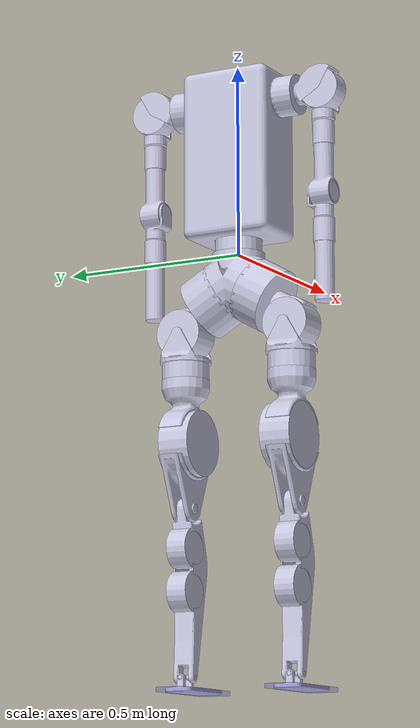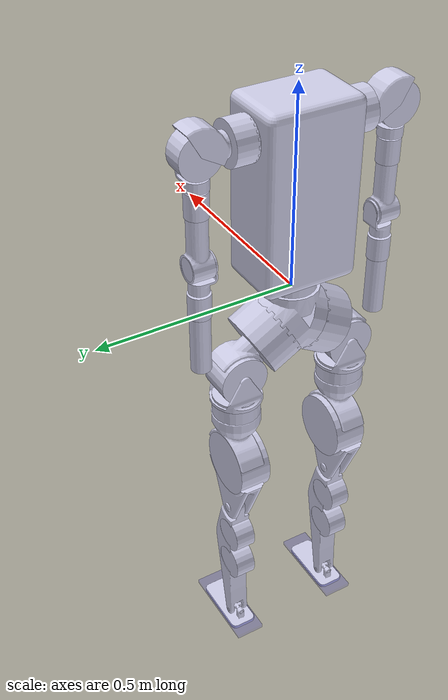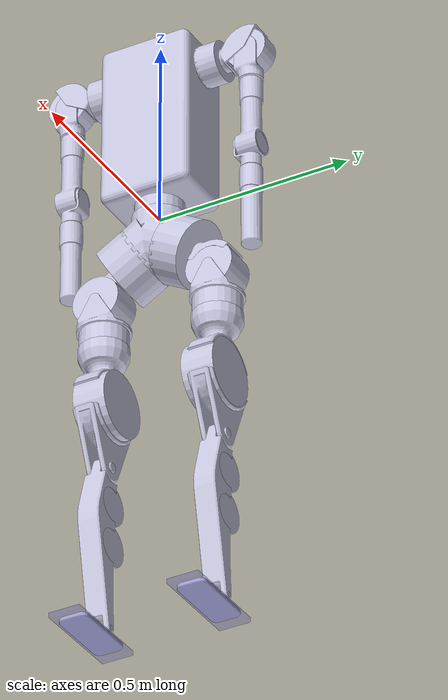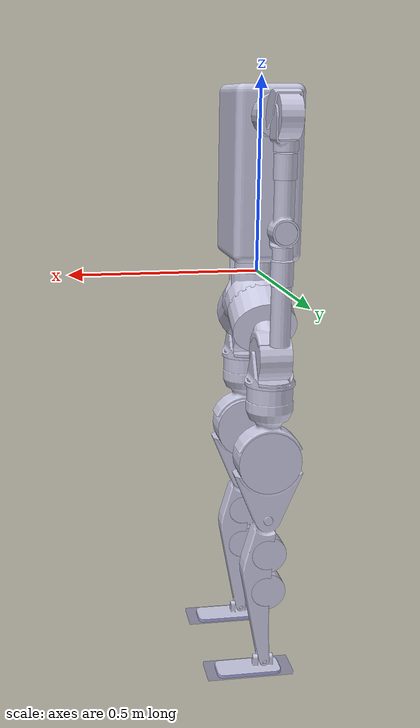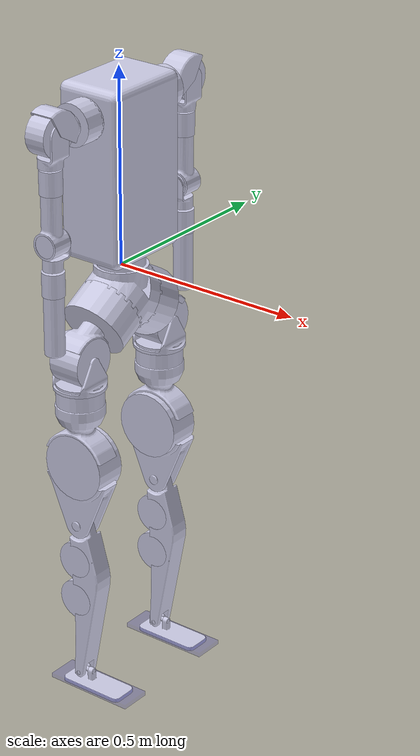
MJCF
<mujoco model="humanoid_pry_merged">
  <compiler angle="radian" meshdir="meshes/"/>

  <asset>
    <mesh name="pelvis_link" file="pelvis_link.stl"/>
    <mesh name="left_hip_pitch_link" file="left_hip_pitch_link.stl"/>
    <mesh name="left_hip_roll_link" file="left_hip_roll_link.stl"/>
    <mesh name="left_hip_yaw_link" file="left_hip_yaw_link.stl"/>
    <mesh name="left_knee_pitch_link" file="left_knee_pitch_link.stl"/>
    <mesh name="left_ankle_pitch_link" file="left_ankle_pitch_link.stl"/>
    <mesh name="left_ankle_roll_link" file="left_ankle_roll_link.stl"/>
    <mesh name="right_hip_pitch_link" file="right_hip_pitch_link.stl"/>
    <mesh name="right_hip_roll_link" file="right_hip_roll_link.stl"/>
    <mesh name="right_hip_yaw_link" file="right_hip_yaw_link.stl"/>
    <mesh name="right_knee_pitch_link" file="right_knee_pitch_link.stl"/>
    <mesh name="right_ankle_pitch_link" file="right_ankle_pitch_link.stl"/>
    <mesh name="right_ankle_roll_link" file="right_ankle_roll_link.stl"/>
    <mesh name="torso_link" file="torso_link.stl"/>
    <mesh name="left_shoulder_pitch_link" file="left_shoulder_pitch_link.stl"/>
    <mesh name="left_shoulder_roll_link" file="left_shoulder_roll_link.stl"/>
    <mesh name="left_shoulder_yaw_link" file="left_shoulder_yaw_link.stl"/>
    <mesh name="left_elbow_pitch_link" file="left_elbow_pitch_link.stl"/>
    <mesh name="left_elbow_yaw_link" file="left_elbow_yaw_link.stl"/>
    <mesh name="right_shoulder_pitch_link" file="right_shoulder_pitch_link.stl"/>
    <mesh name="right_shoulder_roll_link" file="right_shoulder_roll_link.stl"/>
    <mesh name="right_shoulder_yaw_link" file="right_shoulder_yaw_link.stl"/>
    <mesh name="right_elbow_pitch_link" file="right_elbow_pitch_link.stl"/>
    <mesh name="right_elbow_yaw_link" file="right_elbow_yaw_link.stl"/>
  </asset>

  <worldbody>
    <body name="root">
      <inertial pos="-0.000105762 -0.000125932 -0.083059" quat="0.714314 0.699819 -0.00238008 -0.0018917" mass="10.0197" diaginertia="0.0786093 0.0588002 0.0532812"/>
      <joint name="floating_base_joint" type="free" limited="false" actuatorfrclimited="false"/>
      <geom type="mesh" contype="0" conaffinity="0" rgba="0.8 0.8 0.9 1" mesh="pelvis_link"/>
      <geom size="0.085 0.0415" pos="0.000241341 0.0713561 -0.113911" quat="0.866027 0.499998 0 0" type="cylinder" contype="0" conaffinity="0" rgba="0.8 0.8 0.9 1"/>
      <geom size="0.085 0.0415" pos="-0.000444048 -0.0715722 -0.113535" quat="0.500007 0.866021 0 0" type="cylinder" contype="0" conaffinity="0" rgba="0.8 0.8 0.9 1"/>
      <geom size="0.06 0.03205" pos="5.16504e-07 -5.04132e-08 0.0250091" type="cylinder" contype="0" conaffinity="0" rgba="0.8 0.8 0.9 1"/>
      <site name="imu_mount" pos="0 0 0"/>
      <site name="torso_mount" pos="0 0 0.0475"/>
      <site name="imu_site" pos="0 0 0"/>
      <body name="left_hip_pitch_link" pos="0.000472881 0.0986173 -0.1294" quat="0.965926 -0.258819 0 0">
        <inertial pos="-0.00462602 0.0696606 -0.0235316" quat="0.873553 0.485667 0.0307604 0.00932437" mass="2.69168" diaginertia="0.00657498 0.0056448 0.0039876"/>
        <joint name="left_hip_pitch_joint" pos="0 0 0" axis="0 1 0" range="-3.1415 3.1415" armature="0.155952" damping="0.338" frictionloss="1.481"/>
        <geom type="mesh" contype="0" conaffinity="0" rgba="0.8 0.8 0.9 1" mesh="left_hip_pitch_link"/>
        <geom size="0.062 0.0425" pos="-0.00574159 0.0799754 -0.0310142" quat="0.683016 0.183012 0.683009 0.183012" type="cylinder" contype="0" conaffinity="0" rgba="0.8 0.8 0.9 1"/>
        <body name="left_hip_roll_link" pos="0.0367575 0.0798479 -0.0310878" quat="0.965926 0.258819 0 0">
          <inertial pos="-0.0424995 0.000203825 -0.0566004" quat="0.00169529 0.707105 -0.00169529 0.707105" mass="0.607579" diaginertia="0.00147852 0.00127004 0.00077012"/>
          <joint name="left_hip_roll_joint" pos="0 0 0" axis="1 0 0" range="-0.785 1.047" armature="0.32256" damping="0.766" frictionloss="2.492"/>
          <geom type="mesh" contype="0" conaffinity="0" rgba="0.8 0.8 0.9 1" mesh="left_hip_roll_link"/>
          <body name="left_hip_yaw_link" pos="-0.0424995 0.000203861 -0.1155">
            <inertial pos="-0.000105869 -0.0037546 -0.115475" quat="0.706905 -0.0070067 0.00745751 0.707234" mass="7.19819" diaginertia="0.0849143 0.0790738 0.0155256"/>
            <joint name="left_hip_yaw_joint" pos="0 0 0" axis="0 0 1" range="-2.722 2.722" armature="0.061488" damping="0.0069" frictionloss="0.576"/>
            <geom type="mesh" contype="0" conaffinity="0" rgba="0.8 0.8 0.9 1" mesh="left_hip_yaw_link"/>
            <geom size="0.06 0.03205" pos="5.16678e-07 3.40618e-08 0.0224909" type="cylinder" contype="0" conaffinity="0" rgba="0.8 0.8 0.9 1"/>
            <geom size="0.085 0.0415" pos="-0.000238364 -0.0084458 -0.167979" quat="0.70711 0.707103 0 0" type="cylinder" contype="0" conaffinity="0" rgba="0.8 0.8 0.9 1"/>
            <body name="left_knee_pitch_link" pos="9.81694e-10 2.04834e-07 -0.333">
              <inertial pos="0.00791673 1.09261e-07 -0.172865" quat="0.70701 -0.00277597 -0.00195185 0.707195" mass="3.05882" diaginertia="0.0384643 0.0371959 0.0031252"/>
              <joint name="left_knee_pitch_joint" pos="0 0 0" axis="0 1 0" range="0 2.007" armature="0.155952" damping="0.338" frictionloss="1.481"/>
              <geom type="mesh" contype="0" conaffinity="0" rgba="0.8 0.8 0.9 1" mesh="left_knee_pitch_link"/>
              <geom size="0.0525 0.027" pos="-0.00015591 0.0004461 -0.100101" quat="0.70711 0.707103 0 0" type="cylinder" contype="0" conaffinity="0" rgba="0.8 0.8 0.9 1"/>
              <geom size="0.0525 0.027" pos="-0.000319571 -0.0004459 -0.209961" quat="0.70711 0.707103 0 0" type="cylinder" contype="0" conaffinity="0" rgba="0.8 0.8 0.9 1"/>
              <body name="left_ankle_pitch_link" pos="-0.000857798 2.61424e-07 -0.424999">
                <inertial pos="1.5463e-09 -1.54739e-09 -1.72235e-08" quat="0.500032 0.500032 -0.499968 0.499968" mass="0.0915496" diaginertia="2.67722e-05 1.42226e-05 1.42226e-05"/>
                <joint name="left_ankle_pitch_joint" pos="0 0 0" axis="0 1 0" range="-1.221 0.872" armature="0.043416" damping="0.028" frictionloss="0.876"/>
                <geom type="mesh" contype="0" conaffinity="0" rgba="0.8 0.8 0.9 1" mesh="left_ankle_pitch_link"/>
                <body name="left_ankle_roll_link">
                  <inertial pos="0.0388421 1.81614e-08 -0.0295267" quat="0 0.715124 0 0.698997" mass="1.02847" diaginertia="0.00308315 0.00269298 0.000478241"/>
                  <joint name="left_ankle_roll_joint" pos="0 0 0" axis="1 0 0" range="-0.436 0.436" armature="0.043416" damping="0.028" frictionloss="0.876"/>
                  <geom type="mesh" contype="0" conaffinity="0" rgba="0.8 0.8 0.9 1" mesh="left_ankle_roll_link"/>
                  <geom name="left_foot_collision" size="0.12 0.04 0.006" pos="0.04135 0 -0.032" type="box" group="1" rgba="0 0 0.7 0.1"/>
                  <body name="left_foot" pos="0.04135 0 -0.037">
                    <inertial pos="0 0 0" mass="1e-06" diaginertia="1e-09 1e-09 1e-09"/>
                  </body>
                </body>
              </body>
            </body>
          </body>
        </body>
      </body>
      <body name="right_hip_pitch_link" pos="0.000472881 -0.0986173 -0.1294" quat="0.965926 0.258819 0 0">
        <inertial pos="-0.00485402 -0.0696996 -0.0235091" quat="0.48629 0.873424 -0.00825667 -0.0241793" mass="2.69168" diaginertia="0.00657248 0.00564111 0.00398583"/>
        <joint name="right_hip_pitch_joint" pos="0 0 0" axis="0 1 0" range="-3.1415 3.1415" armature="0.155952" damping="0.338" frictionloss="1.481"/>
        <geom type="mesh" contype="0" conaffinity="0" rgba="0.8 0.8 0.9 1" mesh="right_hip_pitch_link"/>
        <geom size="0.062 0.0425" pos="-0.00574159 -0.0800235 -0.0309864" quat="0.683016 -0.183012 0.683009 -0.183012" type="cylinder" contype="0" conaffinity="0" rgba="0.8 0.8 0.9 1"/>
        <body name="right_hip_roll_link" pos="0.0367575 -0.0798479 -0.0310878" quat="0.965926 -0.258819 0 0">
          <inertial pos="-0.043961 -0.000146249 -0.0566004" quat="0.00169529 0.707105 -0.00169529 0.707105" mass="0.607579" diaginertia="0.00147852 0.00127004 0.00077012"/>
          <joint name="right_hip_roll_joint" pos="0 0 0" axis="1 0 0" range="-1.047 0.785" armature="0.32256" damping="0.766" frictionloss="2.492"/>
          <geom type="mesh" contype="0" conaffinity="0" rgba="0.8 0.8 0.9 1" mesh="right_hip_roll_link"/>
          <body name="right_hip_yaw_link" pos="-0.0424995 -0.000203861 -0.1155">
            <inertial pos="-0.00152222 0.00381206 -0.115398" quat="0.70717 0.00735301 -0.00709512 0.706969" mass="7.19824" diaginertia="0.084856 0.0790156 0.0155258"/>
            <joint name="right_hip_yaw_joint" pos="0 0 0" axis="0 0 1" range="-2.722 2.722" armature="0.061488" damping="0.0069" frictionloss="0.576"/>
            <geom type="mesh" contype="0" conaffinity="0" rgba="0.8 0.8 0.9 1" mesh="right_hip_yaw_link"/>
            <geom size="0.06 0.03205" pos="-0.00146102 5.76596e-05 0.0224909" type="cylinder" contype="0" conaffinity="0" rgba="0.8 0.8 0.9 1"/>
            <geom size="0.085 0.0415" pos="-0.00159905 0.0085035 -0.167804" quat="0.70711 0.707103 0 0" type="cylinder" contype="0" conaffinity="0" rgba="0.8 0.8 0.9 1"/>
            <body name="right_knee_pitch_link" pos="9.817e-10 -2.04834e-07 -0.333">
              <inertial pos="0.00672413 5.78078e-05 -0.172816" quat="0.707204 -0.00265831 -0.00348439 0.706996" mass="3.05882" diaginertia="0.0384989 0.0372265 0.00312924"/>
              <joint name="right_knee_pitch_joint" pos="0 0 0" axis="0 1 0" range="0 2.007" armature="0.155952" damping="0.338" frictionloss="1.481"/>
              <geom type="mesh" contype="0" conaffinity="0" rgba="0.8 0.8 0.9 1" mesh="right_knee_pitch_link"/>
              <geom size="0.0525 0.027" pos="-0.0015008 -0.0003883 -0.0998958" quat="0.70711 0.707103 0 0" type="cylinder" contype="0" conaffinity="0" rgba="0.8 0.8 0.9 1"/>
              <geom size="0.0525 0.027" pos="-0.00156307 0.0005039 -0.210046" quat="0.70711 0.707103 0 0" type="cylinder" contype="0" conaffinity="0" rgba="0.8 0.8 0.9 1"/>
              <body name="right_ankle_pitch_link" pos="-0.000857798 -2.61424e-07 -0.424999">
                <inertial pos="-0.00060374 5.80765e-05 -8.82892e-07" quat="0.5 0.5 -0.5 0.5" mass="0.0915496" diaginertia="2.67722e-05 1.42226e-05 1.42226e-05"/>
                <joint name="right_ankle_pitch_joint" pos="0 0 0" axis="0 1 0" range="-1.221 0.872" armature="0.043416" damping="0.028" frictionloss="0.876"/>
                <geom type="mesh" contype="0" conaffinity="0" rgba="0.8 0.8 0.9 1" mesh="right_ankle_pitch_link"/>
                <body name="right_ankle_roll_link">
                  <inertial pos="0.0382421 5.8078e-05 -0.0295226" quat="0 0.71508 0 0.699043" mass="1.02847" diaginertia="0.00308315 0.00269298 0.000478241"/>
                  <joint name="right_ankle_roll_joint" pos="0 0 0" axis="1 0 0" range="-0.436 0.436" armature="0.043416" damping="0.028" frictionloss="0.876"/>
                  <geom type="mesh" contype="0" conaffinity="0" rgba="0.8 0.8 0.9 1" mesh="right_ankle_roll_link"/>
                  <geom name="right_foot_collision" size="0.12 0.04 0.006" pos="0.04135 0 -0.032" type="box" group="1" rgba="0 0 0.7 0.1"/>
                  <body name="right_foot" pos="0.04135 0 -0.037">
                    <inertial pos="0 0 0" mass="1e-06" diaginertia="1e-09 1e-09 1e-09"/>
                  </body>
                </body>
              </body>
            </body>
          </body>
        </body>
      </body>
      <body name="torso_yaw_link" pos="0 0 0.0475">
        <inertial pos="0 0 0.227807" quat="1 0 0 -0.000206205" mass="15.3022" diaginertia="0.348334 0.281258 0.137515"/>
        <joint name="torso_yaw_joint" pos="0 0 0" axis="0 0 1" range="-1.5707 1.5707" armature="0.061488" damping="0.0069" frictionloss="0.576"/>
        <geom type="mesh" contype="0" conaffinity="0" rgba="0.8 0.8 0.9 1" mesh="torso_link"/>
        <geom size="0.0525 0.027" pos="0.000111292 0.147954 0.354996" quat="0.70711 0.707103 0 0" type="cylinder" contype="0" conaffinity="0" rgba="0.8 0.8 0.9 1"/>
        <geom size="0.0525 0.027" pos="-0.000111292 -0.147954 0.354996" quat="0.70711 0.707103 0 0" type="cylinder" contype="0" conaffinity="0" rgba="0.8 0.8 0.9 1"/>
        <site name="left_arm_mount" pos="0 0.176 0.355"/>
        <site name="right_arm_mount" pos="0 -0.176 0.355"/>
        <body name="torso" pos="0 0 0.355">
          <inertial pos="0 0 0" mass="1e-06" diaginertia="1e-09 1e-09 1e-09"/>
        </body>
        <body name="left_shoulder_pitch_link" pos="0 0.176 0.355">
          <inertial pos="-0.00306315 0.0620754 0.00444058" quat="0.727835 0.685332 0.0237004 0.00389183" mass="1.0821" diaginertia="0.00182356 0.00132748 0.00115062"/>
          <joint name="left_shoulder_pitch_joint" pos="0 0 0" axis="0 1 0" range="-2.618 2.007" armature="0.043416" damping="0.028" frictionloss="0.876"/>
          <geom type="mesh" contype="0" conaffinity="0" rgba="0.8 0.8 0.9 1" mesh="left_shoulder_pitch_link"/>
          <geom size="0.0525 0.027" pos="-0.003946 0.0698986 -4.59265e-05" quat="0.70711 0 0.707103 0" type="cylinder" contype="0" conaffinity="0" rgba="0.8 0.8 0.9 1"/>
          <body name="left_shoulder_roll_link" pos="0.024 0.07 0">
            <inertial pos="-0.0192802 7.42705e-09 -0.0545648" quat="0.96696 -2.1985e-07 0.254927 -8.33909e-07" mass="0.28974" diaginertia="0.000310056 0.000288331 0.000120903"/>
            <joint name="left_shoulder_roll_joint" pos="0 0 0" axis="1 0 0" range="-0.175 2.531" armature="0.043416" damping="0.028" frictionloss="0.876"/>
            <geom type="mesh" contype="0" conaffinity="0" rgba="0.8 0.8 0.9 1" mesh="left_shoulder_roll_link"/>
            <body name="left_shoulder_yaw_link" pos="-0.027 0 -0.1405">
              <inertial pos="8.58845e-07 -0.00134537 -0.0559306" quat="0.999944 -0.0105981 2.27804e-05 -7.5063e-06" mass="1.1219" diaginertia="0.00562987 0.00560549 0.000486935"/>
              <joint name="left_shoulder_yaw_joint" pos="0 0 0" axis="0 0 1" range="-2.88 2.88" armature="0.0178848" damping="0.014" frictionloss="0.23"/>
              <geom type="mesh" contype="0" conaffinity="0" rgba="0.8 0.8 0.9 1" mesh="left_shoulder_yaw_link"/>
              <geom size="0.028 0.03025" pos="5.24476e-06 -5.62893e-06 0.026002" type="cylinder" contype="0" conaffinity="0" rgba="0.8 0.8 0.9 1"/>
              <geom size="0.028 0.03025" pos="-2.68858e-06 -0.003998 -0.128007" quat="0.70711 0.707103 0 0" type="cylinder" contype="0" conaffinity="0" rgba="0.8 0.8 0.9 1"/>
              <body name="left_elbow_pitch_link" pos="0 -0.03 -0.128">
                <inertial pos="-1.67859e-06 0.0265135 -0.0778141" quat="0.995929 0.09014 2.39106e-05 -5.21924e-05" mass="0.603963" diaginertia="0.000815049 0.000801572 0.000237622"/>
                <joint name="left_elbow_pitch_joint" pos="0 0 0" axis="0 1 0" range="-2.182 0" armature="0.0178848" damping="0.014" frictionloss="0.23"/>
                <geom type="mesh" contype="0" conaffinity="0" rgba="0.8 0.8 0.9 1" mesh="left_elbow_pitch_link"/>
                <geom size="0.028 0.03025" pos="-2.68858e-06 0.0290072 -0.099498" type="cylinder" contype="0" conaffinity="0" rgba="0.8 0.8 0.9 1"/>
                <body name="left_elbow_yaw_link" pos="0 0.029 -0.1255">
                  <inertial pos="0 0 -0.0779665" mass="0.306173" diaginertia="0.000668211 0.000668211 9.56405e-05"/>
                  <joint name="left_elbow_yaw_joint" pos="0 0 0" axis="0 0 1" range="-2.356 2.356" armature="0.0178848" damping="0.014" frictionloss="0.23"/>
                  <geom type="mesh" contype="0" conaffinity="0" rgba="0.8 0.8 0.9 1" mesh="left_elbow_yaw_link"/>
                  <body name="left_end_effector" pos="0 0 -0.155">
                    <inertial pos="0 0 0" mass="1e-06" diaginertia="1e-09 1e-09 1e-09"/>
                  </body>
                </body>
              </body>
            </body>
          </body>
        </body>
        <body name="right_shoulder_pitch_link" pos="0 -0.176 0.355">
          <inertial pos="-0.00306315 -0.0622329 0.00444058" quat="0.684116 0.728978 -0.00396618 -0.0236854" mass="1.0821" diaginertia="0.00182624 0.00133024 0.00115053"/>
          <joint name="right_shoulder_pitch_joint" pos="0 0 0" axis="0 1 0" range="-2.618 2.007" armature="0.043416" damping="0.028" frictionloss="0.876"/>
          <geom type="mesh" contype="0" conaffinity="0" rgba="0.8 0.8 0.9 1" mesh="right_shoulder_pitch_link"/>
          <geom size="0.0525 0.027" pos="-0.003946 -0.0701014 -4.59265e-05" quat="0.70711 0 0.707103 0" type="cylinder" contype="0" conaffinity="0" rgba="0.8 0.8 0.9 1"/>
          <body name="right_shoulder_roll_link" pos="0.024 -0.07 0">
            <inertial pos="-0.0192802 7.42705e-09 -0.0545648" quat="0.96696 -2.1985e-07 0.254927 -8.33909e-07" mass="0.28974" diaginertia="0.000310056 0.000288331 0.000120903"/>
            <joint name="right_shoulder_roll_joint" pos="0 0 0" axis="1 0 0" range="-2.531 0.175" armature="0.043416" damping="0.028" frictionloss="0.876"/>
            <geom type="mesh" contype="0" conaffinity="0" rgba="0.8 0.8 0.9 1" mesh="right_shoulder_roll_link"/>
            <body name="right_shoulder_yaw_link" pos="-0.027 0 -0.1405">
              <inertial pos="-8.59101e-07 0.00134537 -0.0559306" quat="0.999944 0.0105981 -2.278e-05 -7.5155e-06" mass="1.1219" diaginertia="0.00562987 0.00560549 0.000486935"/>
              <joint name="right_shoulder_yaw_joint" pos="0 0 0" axis="0 0 1" range="-2.88 2.88" armature="0.0178848" damping="0.014" frictionloss="0.23"/>
              <geom type="mesh" contype="0" conaffinity="0" rgba="0.8 0.8 0.9 1" mesh="right_shoulder_yaw_link"/>
              <geom size="0.028 0.03025" pos="-5.24476e-06 5.62893e-06 0.026002" type="cylinder" contype="0" conaffinity="0" rgba="0.8 0.8 0.9 1"/>
              <geom size="0.028 0.03025" pos="2.68858e-06 0.003998 -0.128007" quat="0.70711 0.707103 0 0" type="cylinder" contype="0" conaffinity="0" rgba="0.8 0.8 0.9 1"/>
              <body name="right_elbow_pitch_link" pos="0 0.03 -0.128">
                <inertial pos="-1.67789e-06 -0.0265045 -0.0778141" quat="0.995938 -0.0900385 2.39201e-05 5.22023e-05" mass="0.603963" diaginertia="0.000815022 0.00080153 0.000237637"/>
                <joint name="right_elbow_pitch_joint" pos="0 0 0" axis="0 1 0" range="-2.182 0" armature="0.0178848" damping="0.014" frictionloss="0.23"/>
                <geom type="mesh" contype="0" conaffinity="0" rgba="0.8 0.8 0.9 1" mesh="right_elbow_pitch_link"/>
                <geom size="0.028 0.03025" pos="-2.68858e-06 -0.0289928 -0.099498" type="cylinder" contype="0" conaffinity="0" rgba="0.8 0.8 0.9 1"/>
                <body name="right_elbow_yaw_link" pos="0 -0.029 -0.1255">
                  <inertial pos="0 0 -0.0779665" mass="0.306173" diaginertia="0.000668211 0.000668211 9.56405e-05"/>
                  <joint name="right_elbow_yaw_joint" pos="0 0 0" axis="0 0 1" range="-2.356 2.356" armature="0.0178848" damping="0.014" frictionloss="0.23"/>
                  <geom type="mesh" contype="0" conaffinity="0" rgba="0.8 0.8 0.9 1" mesh="right_elbow_yaw_link"/>
                  <body name="right_end_effector" pos="0 0 -0.155">
                    <inertial pos="0 0 0" mass="1e-06" diaginertia="1e-09 1e-09 1e-09"/>
                  </body>
                </body>
              </body>
            </body>
          </body>
        </body>
      </body>
    </body>
  </worldbody>

  <actuator>
    <general name="left_hip_pitch_act" joint="left_hip_pitch_joint" ctrllimited="true" ctrlrange="-380 380"/>
    <general name="left_hip_roll_act" joint="left_hip_roll_joint" ctrllimited="true" ctrlrange="-360 360"/>
    <general name="left_hip_yaw_act" joint="left_hip_yaw_joint" ctrllimited="true" ctrlrange="-150 150"/>
    <general name="left_knee_pitch_act" joint="left_knee_pitch_joint" ctrllimited="true" ctrlrange="-380 380"/>
    <general name="left_ankle_pitch_act" joint="left_ankle_pitch_joint" ctrllimited="true" ctrlrange="-90 90"/>
    <general name="left_ankle_roll_act" joint="left_ankle_roll_joint" ctrllimited="true" ctrlrange="-90 90"/>
    <general name="right_hip_pitch_act" joint="right_hip_pitch_joint" ctrllimited="true" ctrlrange="-380 380"/>
    <general name="right_hip_roll_act" joint="right_hip_roll_joint" ctrllimited="true" ctrlrange="-360 360"/>
    <general name="right_hip_yaw_act" joint="right_hip_yaw_joint" ctrllimited="true" ctrlrange="-150 150"/>
    <general name="right_knee_pitch_act" joint="right_knee_pitch_joint" ctrllimited="true" ctrlrange="-380 380"/>
    <general name="right_ankle_pitch_act" joint="right_ankle_pitch_joint" ctrllimited="true" ctrlrange="-90 90"/>
    <general name="right_ankle_roll_act" joint="right_ankle_roll_joint" ctrllimited="true" ctrlrange="-90 90"/>
    <general name="torso_yaw_act" joint="torso_yaw_joint" ctrllimited="true" ctrlrange="-150 150"/>
    <general name="left_shoulder_pitch_act" joint="left_shoulder_pitch_joint" ctrllimited="true" ctrlrange="-90 90"/>
    <general name="left_shoulder_roll_act" joint="left_shoulder_roll_joint" ctrllimited="true" ctrlrange="-90 90"/>
    <general name="left_shoulder_yaw_act" joint="left_shoulder_yaw_joint" ctrllimited="true" ctrlrange="-36 36"/>
    <general name="left_elbow_pitch_act" joint="left_elbow_pitch_joint" ctrllimited="true" ctrlrange="-36 36"/>
    <general name="left_elbow_yaw_act" joint="left_elbow_yaw_joint" ctrllimited="true" ctrlrange="-36 36"/>
    <general name="right_shoulder_pitch_act" joint="right_shoulder_pitch_joint" ctrllimited="true" ctrlrange="-90 90"/>
    <general name="right_shoulder_roll_act" joint="right_shoulder_roll_joint" ctrllimited="true" ctrlrange="-90 90"/>
    <general name="right_shoulder_yaw_act" joint="right_shoulder_yaw_joint" ctrllimited="true" ctrlrange="-36 36"/>
    <general name="right_elbow_pitch_act" joint="right_elbow_pitch_joint" ctrllimited="true" ctrlrange="-36 36"/>
    <general name="right_elbow_yaw_act" joint="right_elbow_yaw_joint" ctrllimited="true" ctrlrange="-36 36"/>
  </actuator>

  <sensor>
    <accelerometer site="imu_site" name="accel" noise="0.9"/>
    <gyro site="imu_site" name="gyro" noise="0.026"/>
    <framequat objtype="site" objname="imu_site" name="frame_quat" noise="0.1072"/>
  </sensor>
</mujoco>
